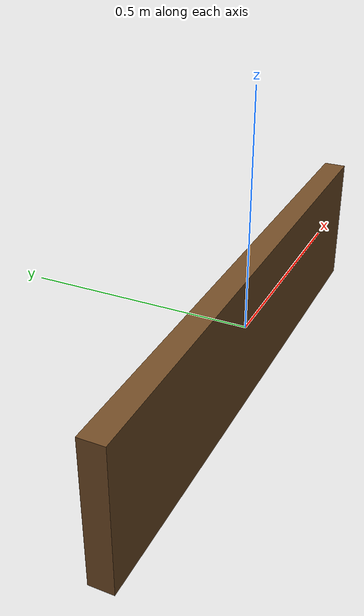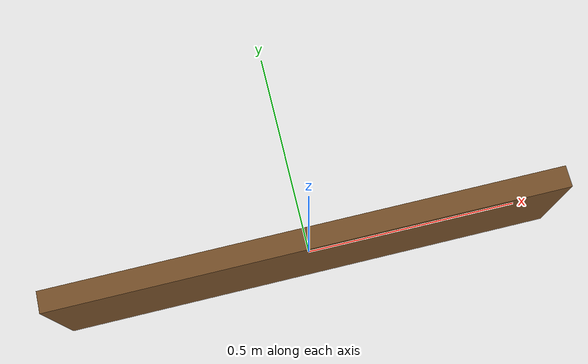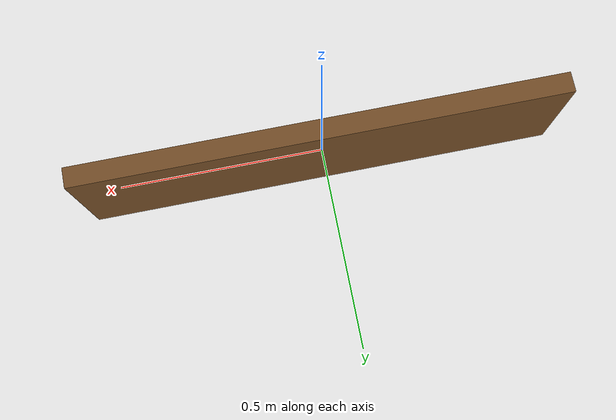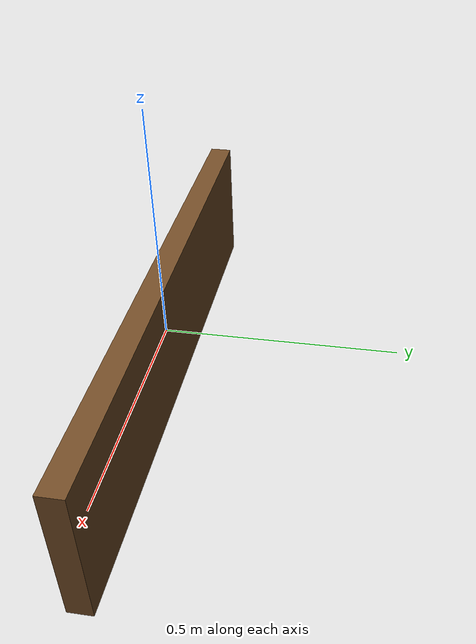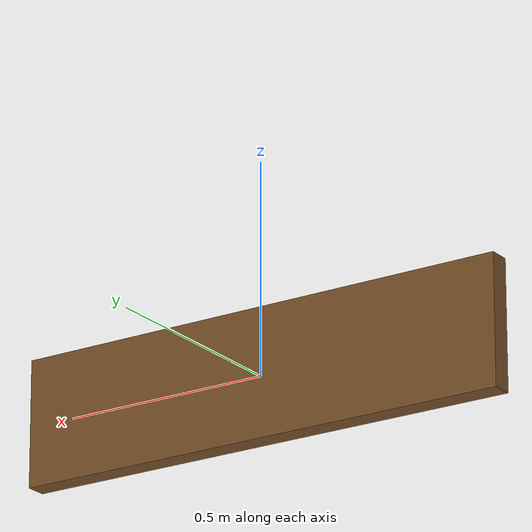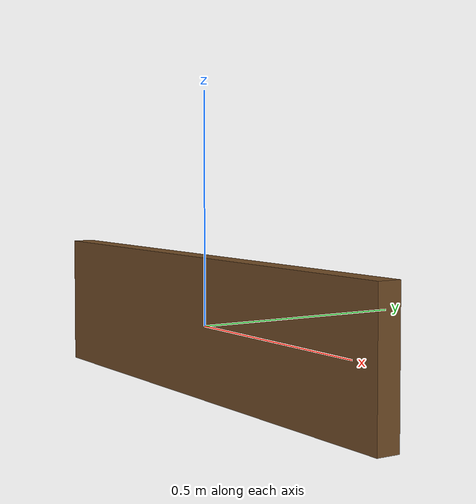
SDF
<?xml version="1.0"?>
<sdf version="1.7">
  <model name="wall120cm">
    <static>true</static>

    <link name="link">

      <collision name="collision">
        <geometry>
          <box>
            <size>1.2 0.05 0.3</size>
          </box>
        </geometry>
      </collision>

      <visual name="visual">
        <geometry>
          <box>
            <size>1.2 0.05 0.3</size>
          </box>
        </geometry>

        <material>
          <ambient>0.45 0.30 0.15 1</ambient>
          <diffuse>0.45 0.30 0.15 1</diffuse>
          <specular>0.05 0.05 0.05 1</specular>
        </material>
      </visual>

    </link>
  </model>
</sdf>
